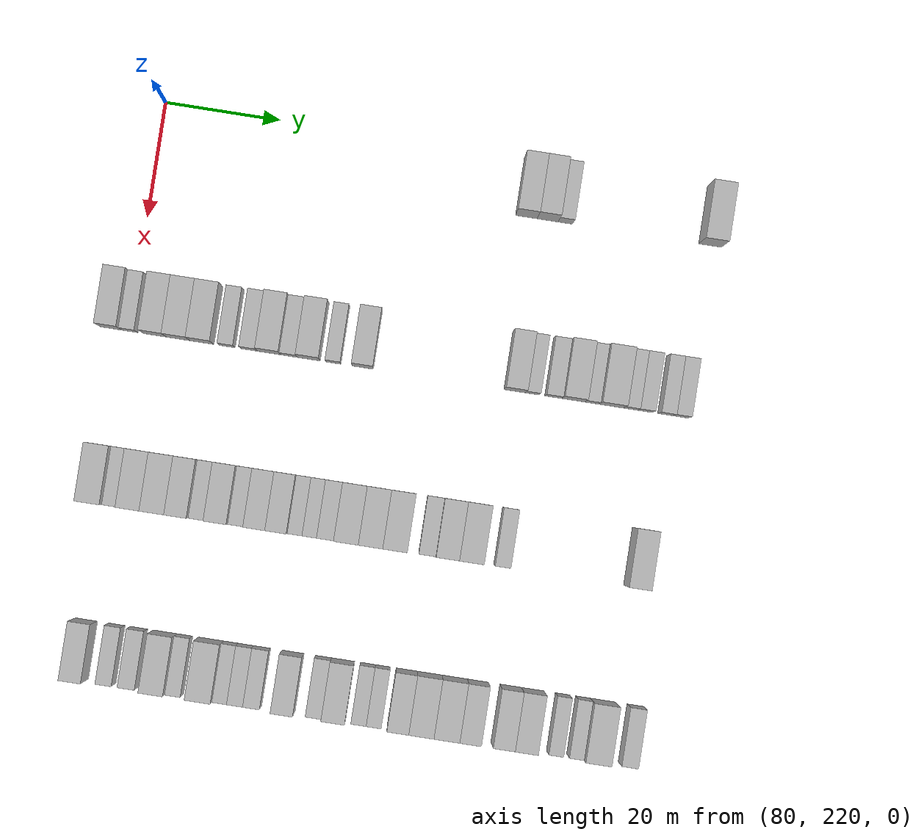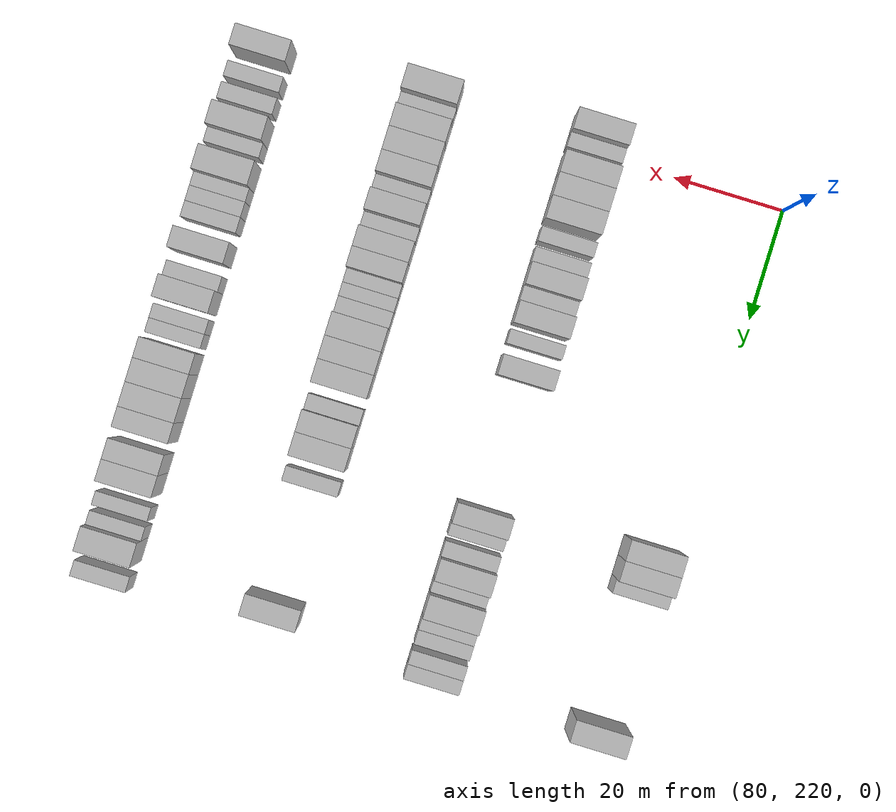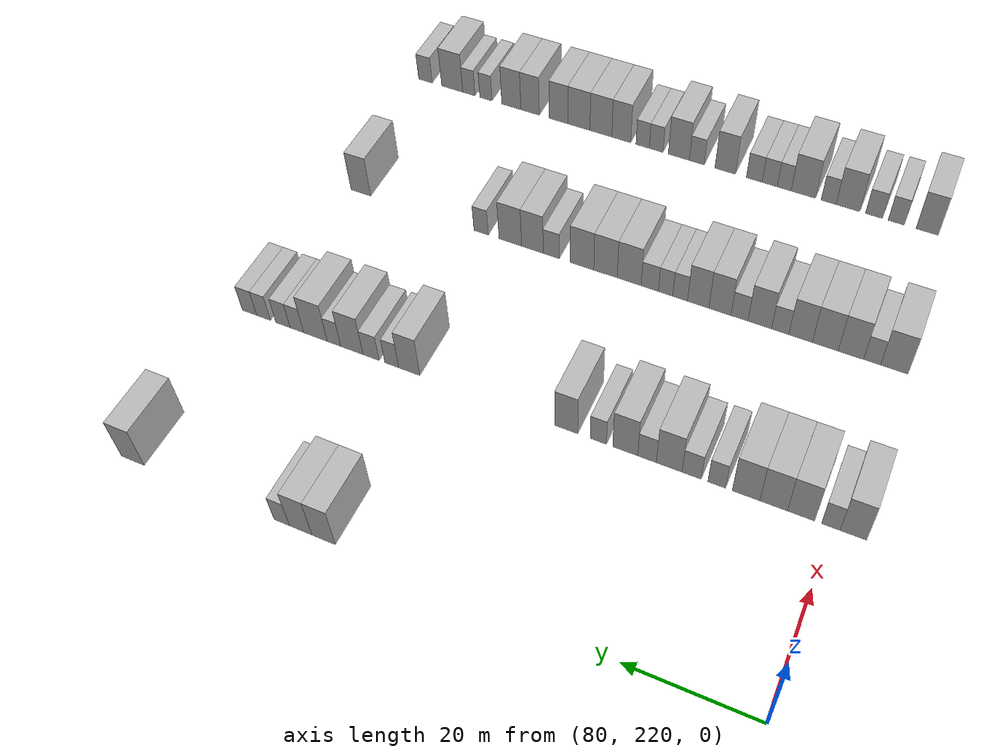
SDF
<sdf version="1.6">
 <world name="default">
  <model name="building_634">
   <static>1</static>
   <pose>85.0000 284.4619 0 0.000000 0.000000 0.000000</pose>
   <link name="link">
    <pose>0 0 4.50 0 0 0</pose>
    <collision name="collision"><geometry><box><size>10.0000 3.7493 9.0000</size></box></geometry></collision>
    <visual name="visual">
     <cast_shadows>0</cast_shadows>
     <geometry><box><size>10.0000 3.7493 9.0000</size></box></geometry>
     <material>
      <script>
       <uri>model://HANNAS_wall/materials/scripts</uri>
       <uri>model://HANNAS_wall/materials/textures</uri>
       <name>vrc/HANNAS_wall</name>
      </script>
     </material>
    </visual>
   </link>
  </model>
  <model name="building_635">
   <static>1</static>
   <pose>85.0000 288.1668 0 0.000000 0.000000 0.000000</pose>
   <link name="link">
    <pose>0 0 4.50 0 0 0</pose>
    <collision name="collision"><geometry><box><size>10.0000 3.6605 9.0000</size></box></geometry></collision>
    <visual name="visual">
     <cast_shadows>0</cast_shadows>
     <geometry><box><size>10.0000 3.6605 9.0000</size></box></geometry>
     <material>
      <script>
       <uri>model://HANNAS_wall/materials/scripts</uri>
       <uri>model://HANNAS_wall/materials/textures</uri>
       <name>vrc/HANNAS_wall</name>
      </script>
     </material>
    </visual>
   </link>
  </model>
  <model name="building_636">
   <static>1</static>
   <pose>85.0000 291.2552 0 0.000000 0.000000 0.000000</pose>
   <link name="link">
    <pose>0 0 3.00 0 0 0</pose>
    <collision name="collision"><geometry><box><size>10.0000 2.5165 6.0000</size></box></geometry></collision>
    <visual name="visual">
     <cast_shadows>0</cast_shadows>
     <geometry><box><size>10.0000 2.5165 6.0000</size></box></geometry>
     <material>
      <script>
       <uri>model://HANNAS_wall/materials/scripts</uri>
       <uri>model://HANNAS_wall/materials/textures</uri>
       <name>vrc/HANNAS_wall</name>
      </script>
     </material>
    </visual>
   </link>
  </model>
  <model name="building_637">
   <static>1</static>
   <pose>85.0000 316.4988 0 0.000000 0.000000 0.000000</pose>
   <link name="link">
    <pose>0 0 4.50 0 0 0</pose>
    <collision name="collision"><geometry><box><size>10.0000 3.9902 9.0000</size></box></geometry></collision>
    <visual name="visual">
     <cast_shadows>0</cast_shadows>
     <geometry><box><size>10.0000 3.9902 9.0000</size></box></geometry>
     <material>
      <script>
       <uri>model://HANNAS_wall/materials/scripts</uri>
       <uri>model://HANNAS_wall/materials/textures</uri>
       <name>vrc/HANNAS_wall</name>
      </script>
     </material>
    </visual>
   </link>
  </model>
  <model name="building_838">
   <static>1</static>
   <pose>115.0000 216.9554 0 0.000000 0.000000 0.000000</pose>
   <link name="link">
    <pose>0 0 4.50 0 0 0</pose>
    <collision name="collision"><geometry><box><size>10.0000 3.8053 9.0000</size></box></geometry></collision>
    <visual name="visual">
     <cast_shadows>0</cast_shadows>
     <geometry><box><size>10.0000 3.8053 9.0000</size></box></geometry>
     <material>
      <script>
       <uri>model://HANNAS_wall/materials/scripts</uri>
       <uri>model://HANNAS_wall/materials/textures</uri>
       <name>vrc/HANNAS_wall</name>
      </script>
     </material>
    </visual>
   </link>
  </model>
  <model name="building_839">
   <static>1</static>
   <pose>115.0000 220.1987 0 0.000000 0.000000 0.000000</pose>
   <link name="link">
    <pose>0 0 3.00 0 0 0</pose>
    <collision name="collision"><geometry><box><size>10.0000 2.6813 6.0000</size></box></geometry></collision>
    <visual name="visual">
     <cast_shadows>0</cast_shadows>
     <geometry><box><size>10.0000 2.6813 6.0000</size></box></geometry>
     <material>
      <script>
       <uri>model://HANNAS_wall/materials/scripts</uri>
       <uri>model://HANNAS_wall/materials/textures</uri>
       <name>vrc/HANNAS_wall</name>
      </script>
     </material>
    </visual>
   </link>
  </model>
  <model name="building_840">
   <static>1</static>
   <pose>115.0000 224.5318 0 0.000000 0.000000 0.000000</pose>
   <link name="link">
    <pose>0 0 4.50 0 0 0</pose>
    <collision name="collision"><geometry><box><size>10.0000 3.9849 9.0000</size></box></geometry></collision>
    <visual name="visual">
     <cast_shadows>0</cast_shadows>
     <geometry><box><size>10.0000 3.9849 9.0000</size></box></geometry>
     <material>
      <script>
       <uri>model://HANNAS_wall/materials/scripts</uri>
       <uri>model://HANNAS_wall/materials/textures</uri>
       <name>vrc/HANNAS_wall</name>
      </script>
     </material>
    </visual>
   </link>
  </model>
  <model name="building_841">
   <static>1</static>
   <pose>115.0000 228.5783 0 0.000000 0.000000 0.000000</pose>
   <link name="link">
    <pose>0 0 4.50 0 0 0</pose>
    <collision name="collision"><geometry><box><size>10.0000 4.1080 9.0000</size></box></geometry></collision>
    <visual name="visual">
     <cast_shadows>0</cast_shadows>
     <geometry><box><size>10.0000 4.1080 9.0000</size></box></geometry>
     <material>
      <script>
       <uri>model://HANNAS_wall/materials/scripts</uri>
       <uri>model://HANNAS_wall/materials/textures</uri>
       <name>vrc/HANNAS_wall</name>
      </script>
     </material>
    </visual>
   </link>
  </model>
  <model name="building_842">
   <static>1</static>
   <pose>115.0000 232.6899 0 0.000000 0.000000 0.000000</pose>
   <link name="link">
    <pose>0 0 4.50 0 0 0</pose>
    <collision name="collision"><geometry><box><size>10.0000 4.1153 9.0000</size></box></geometry></collision>
    <visual name="visual">
     <cast_shadows>0</cast_shadows>
     <geometry><box><size>10.0000 4.1153 9.0000</size></box></geometry>
     <material>
      <script>
       <uri>model://HANNAS_wall/materials/scripts</uri>
       <uri>model://HANNAS_wall/materials/textures</uri>
       <name>vrc/HANNAS_wall</name>
      </script>
     </material>
    </visual>
   </link>
  </model>
  <model name="building_843">
   <static>1</static>
   <pose>115.0000 237.0971 0 0.000000 0.000000 0.000000</pose>
   <link name="link">
    <pose>0 0 3.00 0 0 0</pose>
    <collision name="collision"><geometry><box><size>10.0000 2.6990 6.0000</size></box></geometry></collision>
    <visual name="visual">
     <cast_shadows>0</cast_shadows>
     <geometry><box><size>10.0000 2.6990 6.0000</size></box></geometry>
     <material>
      <script>
       <uri>model://HANNAS_wall/materials/scripts</uri>
       <uri>model://HANNAS_wall/materials/textures</uri>
       <name>vrc/HANNAS_wall</name>
      </script>
     </material>
    </visual>
   </link>
  </model>
  <model name="building_844">
   <static>1</static>
   <pose>115.0000 240.9316 0 0.000000 0.000000 0.000000</pose>
   <link name="link">
    <pose>0 0 3.00 0 0 0</pose>
    <collision name="collision"><geometry><box><size>10.0000 2.9701 6.0000</size></box></geometry></collision>
    <visual name="visual">
     <cast_shadows>0</cast_shadows>
     <geometry><box><size>10.0000 2.9701 6.0000</size></box></geometry>
     <material>
      <script>
       <uri>model://HANNAS_wall/materials/scripts</uri>
       <uri>model://HANNAS_wall/materials/textures</uri>
       <name>vrc/HANNAS_wall</name>
      </script>
     </material>
    </visual>
   </link>
  </model>
  <model name="building_845">
   <static>1</static>
   <pose>115.0000 244.4042 0 0.000000 0.000000 0.000000</pose>
   <link name="link">
    <pose>0 0 4.50 0 0 0</pose>
    <collision name="collision"><geometry><box><size>10.0000 3.9750 9.0000</size></box></geometry></collision>
    <visual name="visual">
     <cast_shadows>0</cast_shadows>
     <geometry><box><size>10.0000 3.9750 9.0000</size></box></geometry>
     <material>
      <script>
       <uri>model://HANNAS_wall/materials/scripts</uri>
       <uri>model://HANNAS_wall/materials/textures</uri>
       <name>vrc/HANNAS_wall</name>
      </script>
     </material>
    </visual>
   </link>
  </model>
  <model name="building_846">
   <static>1</static>
   <pose>115.0000 247.8423 0 0.000000 0.000000 0.000000</pose>
   <link name="link">
    <pose>0 0 3.00 0 0 0</pose>
    <collision name="collision"><geometry><box><size>10.0000 2.9011 6.0000</size></box></geometry></collision>
    <visual name="visual">
     <cast_shadows>0</cast_shadows>
     <geometry><box><size>10.0000 2.9011 6.0000</size></box></geometry>
     <material>
      <script>
       <uri>model://HANNAS_wall/materials/scripts</uri>
       <uri>model://HANNAS_wall/materials/textures</uri>
       <name>vrc/HANNAS_wall</name>
      </script>
     </material>
    </visual>
   </link>
  </model>
  <model name="building_847">
   <static>1</static>
   <pose>115.0000 251.2636 0 0.000000 0.000000 0.000000</pose>
   <link name="link">
    <pose>0 0 4.50 0 0 0</pose>
    <collision name="collision"><geometry><box><size>10.0000 3.9415 9.0000</size></box></geometry></collision>
    <visual name="visual">
     <cast_shadows>0</cast_shadows>
     <geometry><box><size>10.0000 3.9415 9.0000</size></box></geometry>
     <material>
      <script>
       <uri>model://HANNAS_wall/materials/scripts</uri>
       <uri>model://HANNAS_wall/materials/textures</uri>
       <name>vrc/HANNAS_wall</name>
      </script>
     </material>
    </visual>
   </link>
  </model>
  <model name="building_848">
   <static>1</static>
   <pose>115.0000 255.5316 0 0.000000 0.000000 0.000000</pose>
   <link name="link">
    <pose>0 0 3.00 0 0 0</pose>
    <collision name="collision"><geometry><box><size>10.0000 2.5944 6.0000</size></box></geometry></collision>
    <visual name="visual">
     <cast_shadows>0</cast_shadows>
     <geometry><box><size>10.0000 2.5944 6.0000</size></box></geometry>
     <material>
      <script>
       <uri>model://HANNAS_wall/materials/scripts</uri>
       <uri>model://HANNAS_wall/materials/textures</uri>
       <name>vrc/HANNAS_wall</name>
      </script>
     </material>
    </visual>
   </link>
  </model>
  <model name="building_849">
   <static>1</static>
   <pose>115.0000 260.6561 0 0.000000 0.000000 0.000000</pose>
   <link name="link">
    <pose>0 0 4.50 0 0 0</pose>
    <collision name="collision"><geometry><box><size>10.0000 3.6546 9.0000</size></box></geometry></collision>
    <visual name="visual">
     <cast_shadows>0</cast_shadows>
     <geometry><box><size>10.0000 3.6546 9.0000</size></box></geometry>
     <material>
      <script>
       <uri>model://HANNAS_wall/materials/scripts</uri>
       <uri>model://HANNAS_wall/materials/textures</uri>
       <name>vrc/HANNAS_wall</name>
      </script>
     </material>
    </visual>
   </link>
  </model>
  <model name="building_850">
   <static>1</static>
   <pose>115.0000 287.0211 0 0.000000 0.000000 0.000000</pose>
   <link name="link">
    <pose>0 0 4.50 0 0 0</pose>
    <collision name="collision"><geometry><box><size>10.0000 3.6918 9.0000</size></box></geometry></collision>
    <visual name="visual">
     <cast_shadows>0</cast_shadows>
     <geometry><box><size>10.0000 3.6918 9.0000</size></box></geometry>
     <material>
      <script>
       <uri>model://HANNAS_wall/materials/scripts</uri>
       <uri>model://HANNAS_wall/materials/textures</uri>
       <name>vrc/HANNAS_wall</name>
      </script>
     </material>
    </visual>
   </link>
  </model>
  <model name="building_851">
   <static>1</static>
   <pose>115.0000 290.0725 0 0.000000 0.000000 0.000000</pose>
   <link name="link">
    <pose>0 0 3.00 0 0 0</pose>
    <collision name="collision"><geometry><box><size>10.0000 2.4110 6.0000</size></box></geometry></collision>
    <visual name="visual">
     <cast_shadows>0</cast_shadows>
     <geometry><box><size>10.0000 2.4110 6.0000</size></box></geometry>
     <material>
      <script>
       <uri>model://HANNAS_wall/materials/scripts</uri>
       <uri>model://HANNAS_wall/materials/textures</uri>
       <name>vrc/HANNAS_wall</name>
      </script>
     </material>
    </visual>
   </link>
  </model>
  <model name="building_852">
   <static>1</static>
   <pose>115.0000 293.7080 0 0.000000 0.000000 0.000000</pose>
   <link name="link">
    <pose>0 0 3.00 0 0 0</pose>
    <collision name="collision"><geometry><box><size>10.0000 2.8600 6.0000</size></box></geometry></collision>
    <visual name="visual">
     <cast_shadows>0</cast_shadows>
     <geometry><box><size>10.0000 2.8600 6.0000</size></box></geometry>
     <material>
      <script>
       <uri>model://HANNAS_wall/materials/scripts</uri>
       <uri>model://HANNAS_wall/materials/textures</uri>
       <name>vrc/HANNAS_wall</name>
      </script>
     </material>
    </visual>
   </link>
  </model>
  <model name="building_853">
   <static>1</static>
   <pose>115.0000 297.1183 0 0.000000 0.000000 0.000000</pose>
   <link name="link">
    <pose>0 0 4.50 0 0 0</pose>
    <collision name="collision"><geometry><box><size>10.0000 3.9606 9.0000</size></box></geometry></collision>
    <visual name="visual">
     <cast_shadows>0</cast_shadows>
     <geometry><box><size>10.0000 3.9606 9.0000</size></box></geometry>
     <material>
      <script>
       <uri>model://HANNAS_wall/materials/scripts</uri>
       <uri>model://HANNAS_wall/materials/textures</uri>
       <name>vrc/HANNAS_wall</name>
      </script>
     </material>
    </visual>
   </link>
  </model>
  <model name="building_854">
   <static>1</static>
   <pose>115.0000 300.3103 0 0.000000 0.000000 0.000000</pose>
   <link name="link">
    <pose>0 0 3.00 0 0 0</pose>
    <collision name="collision"><geometry><box><size>10.0000 2.4234 6.0000</size></box></geometry></collision>
    <visual name="visual">
     <cast_shadows>0</cast_shadows>
     <geometry><box><size>10.0000 2.4234 6.0000</size></box></geometry>
     <material>
      <script>
       <uri>model://HANNAS_wall/materials/scripts</uri>
       <uri>model://HANNAS_wall/materials/textures</uri>
       <name>vrc/HANNAS_wall</name>
      </script>
     </material>
    </visual>
   </link>
  </model>
  <model name="building_855">
   <static>1</static>
   <pose>115.0000 303.6743 0 0.000000 0.000000 0.000000</pose>
   <link name="link">
    <pose>0 0 4.50 0 0 0</pose>
    <collision name="collision"><geometry><box><size>10.0000 4.3046 9.0000</size></box></geometry></collision>
    <visual name="visual">
     <cast_shadows>0</cast_shadows>
     <geometry><box><size>10.0000 4.3046 9.0000</size></box></geometry>
     <material>
      <script>
       <uri>model://HANNAS_wall/materials/scripts</uri>
       <uri>model://HANNAS_wall/materials/textures</uri>
       <name>vrc/HANNAS_wall</name>
      </script>
     </material>
    </visual>
   </link>
  </model>
  <model name="building_856">
   <static>1</static>
   <pose>115.0000 307.0585 0 0.000000 0.000000 0.000000</pose>
   <link name="link">
    <pose>0 0 3.00 0 0 0</pose>
    <collision name="collision"><geometry><box><size>10.0000 2.4638 6.0000</size></box></geometry></collision>
    <visual name="visual">
     <cast_shadows>0</cast_shadows>
     <geometry><box><size>10.0000 2.4638 6.0000</size></box></geometry>
     <material>
      <script>
       <uri>model://HANNAS_wall/materials/scripts</uri>
       <uri>model://HANNAS_wall/materials/textures</uri>
       <name>vrc/HANNAS_wall</name>
      </script>
     </material>
    </visual>
   </link>
  </model>
  <model name="building_857">
   <static>1</static>
   <pose>115.0000 309.6032 0 0.000000 0.000000 0.000000</pose>
   <link name="link">
    <pose>0 0 3.00 0 0 0</pose>
    <collision name="collision"><geometry><box><size>10.0000 2.6256 6.0000</size></box></geometry></collision>
    <visual name="visual">
     <cast_shadows>0</cast_shadows>
     <geometry><box><size>10.0000 2.6256 6.0000</size></box></geometry>
     <material>
      <script>
       <uri>model://HANNAS_wall/materials/scripts</uri>
       <uri>model://HANNAS_wall/materials/textures</uri>
       <name>vrc/HANNAS_wall</name>
      </script>
     </material>
    </visual>
   </link>
  </model>
  <model name="building_858">
   <static>1</static>
   <pose>115.0000 313.2054 0 0.000000 0.000000 0.000000</pose>
   <link name="link">
    <pose>0 0 3.00 0 0 0</pose>
    <collision name="collision"><geometry><box><size>10.0000 2.5788 6.0000</size></box></geometry></collision>
    <visual name="visual">
     <cast_shadows>0</cast_shadows>
     <geometry><box><size>10.0000 2.5788 6.0000</size></box></geometry>
     <material>
      <script>
       <uri>model://HANNAS_wall/materials/scripts</uri>
       <uri>model://HANNAS_wall/materials/textures</uri>
       <name>vrc/HANNAS_wall</name>
      </script>
     </material>
    </visual>
   </link>
  </model>
  <model name="building_859">
   <static>1</static>
   <pose>115.0000 315.8160 0 0.000000 0.000000 0.000000</pose>
   <link name="link">
    <pose>0 0 3.00 0 0 0</pose>
    <collision name="collision"><geometry><box><size>10.0000 2.6425 6.0000</size></box></geometry></collision>
    <visual name="visual">
     <cast_shadows>0</cast_shadows>
     <geometry><box><size>10.0000 2.6425 6.0000</size></box></geometry>
     <material>
      <script>
       <uri>model://HANNAS_wall/materials/scripts</uri>
       <uri>model://HANNAS_wall/materials/textures</uri>
       <name>vrc/HANNAS_wall</name>
      </script>
     </material>
    </visual>
   </link>
  </model>
  <model name="building_1063">
   <static>1</static>
   <pose>145.0000 218.6642 0 0.000000 0.000000 0.000000</pose>
   <link name="link">
    <pose>0 0 4.50 0 0 0</pose>
    <collision name="collision"><geometry><box><size>10.0000 4.2945 9.0000</size></box></geometry></collision>
    <visual name="visual">
     <cast_shadows>0</cast_shadows>
     <geometry><box><size>10.0000 4.2945 9.0000</size></box></geometry>
     <material>
      <script>
       <uri>model://HANNAS_wall/materials/scripts</uri>
       <uri>model://HANNAS_wall/materials/textures</uri>
       <name>vrc/HANNAS_wall</name>
      </script>
     </material>
    </visual>
   </link>
  </model>
  <model name="building_1064">
   <static>1</static>
   <pose>145.0000 222.1513 0 0.000000 0.000000 0.000000</pose>
   <link name="link">
    <pose>0 0 3.00 0 0 0</pose>
    <collision name="collision"><geometry><box><size>10.0000 2.6797 6.0000</size></box></geometry></collision>
    <visual name="visual">
     <cast_shadows>0</cast_shadows>
     <geometry><box><size>10.0000 2.6797 6.0000</size></box></geometry>
     <material>
      <script>
       <uri>model://HANNAS_wall/materials/scripts</uri>
       <uri>model://HANNAS_wall/materials/textures</uri>
       <name>vrc/HANNAS_wall</name>
      </script>
     </material>
    </visual>
   </link>
  </model>
  <model name="building_1065">
   <static>1</static>
   <pose>145.0000 225.5182 0 0.000000 0.000000 0.000000</pose>
   <link name="link">
    <pose>0 0 4.50 0 0 0</pose>
    <collision name="collision"><geometry><box><size>10.0000 4.0542 9.0000</size></box></geometry></collision>
    <visual name="visual">
     <cast_shadows>0</cast_shadows>
     <geometry><box><size>10.0000 4.0542 9.0000</size></box></geometry>
     <material>
      <script>
       <uri>model://HANNAS_wall/materials/scripts</uri>
       <uri>model://HANNAS_wall/materials/textures</uri>
       <name>vrc/HANNAS_wall</name>
      </script>
     </material>
    </visual>
   </link>
  </model>
  <model name="building_1066">
   <static>1</static>
   <pose>145.0000 229.6432 0 0.000000 0.000000 0.000000</pose>
   <link name="link">
    <pose>0 0 4.50 0 0 0</pose>
    <collision name="collision"><geometry><box><size>10.0000 4.1957 9.0000</size></box></geometry></collision>
    <visual name="visual">
     <cast_shadows>0</cast_shadows>
     <geometry><box><size>10.0000 4.1957 9.0000</size></box></geometry>
     <material>
      <script>
       <uri>model://HANNAS_wall/materials/scripts</uri>
       <uri>model://HANNAS_wall/materials/textures</uri>
       <name>vrc/HANNAS_wall</name>
      </script>
     </material>
    </visual>
   </link>
  </model>
  <model name="building_1067">
   <static>1</static>
   <pose>145.0000 233.6533 0 0.000000 0.000000 0.000000</pose>
   <link name="link">
    <pose>0 0 4.50 0 0 0</pose>
    <collision name="collision"><geometry><box><size>10.0000 3.8246 9.0000</size></box></geometry></collision>
    <visual name="visual">
     <cast_shadows>0</cast_shadows>
     <geometry><box><size>10.0000 3.8246 9.0000</size></box></geometry>
     <material>
      <script>
       <uri>model://HANNAS_wall/materials/scripts</uri>
       <uri>model://HANNAS_wall/materials/textures</uri>
       <name>vrc/HANNAS_wall</name>
      </script>
     </material>
    </visual>
   </link>
  </model>
  <model name="building_1068">
   <static>1</static>
   <pose>145.0000 236.9856 0 0.000000 0.000000 0.000000</pose>
   <link name="link">
    <pose>0 0 3.00 0 0 0</pose>
    <collision name="collision"><geometry><box><size>10.0000 2.8398 6.0000</size></box></geometry></collision>
    <visual name="visual">
     <cast_shadows>0</cast_shadows>
     <geometry><box><size>10.0000 2.8398 6.0000</size></box></geometry>
     <material>
      <script>
       <uri>model://HANNAS_wall/materials/scripts</uri>
       <uri>model://HANNAS_wall/materials/textures</uri>
       <name>vrc/HANNAS_wall</name>
      </script>
     </material>
    </visual>
   </link>
  </model>
  <model name="building_1069">
   <static>1</static>
   <pose>145.0000 240.3594 0 0.000000 0.000000 0.000000</pose>
   <link name="link">
    <pose>0 0 4.50 0 0 0</pose>
    <collision name="collision"><geometry><box><size>10.0000 3.9079 9.0000</size></box></geometry></collision>
    <visual name="visual">
     <cast_shadows>0</cast_shadows>
     <geometry><box><size>10.0000 3.9079 9.0000</size></box></geometry>
     <material>
      <script>
       <uri>model://HANNAS_wall/materials/scripts</uri>
       <uri>model://HANNAS_wall/materials/textures</uri>
       <name>vrc/HANNAS_wall</name>
      </script>
     </material>
    </visual>
   </link>
  </model>
  <model name="building_1070">
   <static>1</static>
   <pose>145.0000 243.7230 0 0.000000 0.000000 0.000000</pose>
   <link name="link">
    <pose>0 0 3.00 0 0 0</pose>
    <collision name="collision"><geometry><box><size>10.0000 2.8191 6.0000</size></box></geometry></collision>
    <visual name="visual">
     <cast_shadows>0</cast_shadows>
     <geometry><box><size>10.0000 2.8191 6.0000</size></box></geometry>
     <material>
      <script>
       <uri>model://HANNAS_wall/materials/scripts</uri>
       <uri>model://HANNAS_wall/materials/textures</uri>
       <name>vrc/HANNAS_wall</name>
      </script>
     </material>
    </visual>
   </link>
  </model>
  <model name="building_1071">
   <static>1</static>
   <pose>145.0000 246.9979 0 0.000000 0.000000 0.000000</pose>
   <link name="link">
    <pose>0 0 4.50 0 0 0</pose>
    <collision name="collision"><geometry><box><size>10.0000 3.7308 9.0000</size></box></geometry></collision>
    <visual name="visual">
     <cast_shadows>0</cast_shadows>
     <geometry><box><size>10.0000 3.7308 9.0000</size></box></geometry>
     <material>
      <script>
       <uri>model://HANNAS_wall/materials/scripts</uri>
       <uri>model://HANNAS_wall/materials/textures</uri>
       <name>vrc/HANNAS_wall</name>
      </script>
     </material>
    </visual>
   </link>
  </model>
  <model name="building_1072">
   <static>1</static>
   <pose>145.0000 250.6805 0 0.000000 0.000000 0.000000</pose>
   <link name="link">
    <pose>0 0 4.50 0 0 0</pose>
    <collision name="collision"><geometry><box><size>10.0000 3.6344 9.0000</size></box></geometry></collision>
    <visual name="visual">
     <cast_shadows>0</cast_shadows>
     <geometry><box><size>10.0000 3.6344 9.0000</size></box></geometry>
     <material>
      <script>
       <uri>model://HANNAS_wall/materials/scripts</uri>
       <uri>model://HANNAS_wall/materials/textures</uri>
       <name>vrc/HANNAS_wall</name>
      </script>
     </material>
    </visual>
   </link>
  </model>
  <model name="building_1073">
   <static>1</static>
   <pose>145.0000 253.7580 0 0.000000 0.000000 0.000000</pose>
   <link name="link">
    <pose>0 0 3.00 0 0 0</pose>
    <collision name="collision"><geometry><box><size>10.0000 2.5204 6.0000</size></box></geometry></collision>
    <visual name="visual">
     <cast_shadows>0</cast_shadows>
     <geometry><box><size>10.0000 2.5204 6.0000</size></box></geometry>
     <material>
      <script>
       <uri>model://HANNAS_wall/materials/scripts</uri>
       <uri>model://HANNAS_wall/materials/textures</uri>
       <name>vrc/HANNAS_wall</name>
      </script>
     </material>
    </visual>
   </link>
  </model>
  <model name="building_1074">
   <static>1</static>
   <pose>145.0000 256.2598 0 0.000000 0.000000 0.000000</pose>
   <link name="link">
    <pose>0 0 3.00 0 0 0</pose>
    <collision name="collision"><geometry><box><size>10.0000 2.4832 6.0000</size></box></geometry></collision>
    <visual name="visual">
     <cast_shadows>0</cast_shadows>
     <geometry><box><size>10.0000 2.4832 6.0000</size></box></geometry>
     <material>
      <script>
       <uri>model://HANNAS_wall/materials/scripts</uri>
       <uri>model://HANNAS_wall/materials/textures</uri>
       <name>vrc/HANNAS_wall</name>
      </script>
     </material>
    </visual>
   </link>
  </model>
  <model name="building_1075">
   <static>1</static>
   <pose>145.0000 258.9997 0 0.000000 0.000000 0.000000</pose>
   <link name="link">
    <pose>0 0 3.00 0 0 0</pose>
    <collision name="collision"><geometry><box><size>10.0000 2.9967 6.0000</size></box></geometry></collision>
    <visual name="visual">
     <cast_shadows>0</cast_shadows>
     <geometry><box><size>10.0000 2.9967 6.0000</size></box></geometry>
     <material>
      <script>
       <uri>model://HANNAS_wall/materials/scripts</uri>
       <uri>model://HANNAS_wall/materials/textures</uri>
       <name>vrc/HANNAS_wall</name>
      </script>
     </material>
    </visual>
   </link>
  </model>
  <model name="building_1076">
   <static>1</static>
   <pose>145.0000 262.5958 0 0.000000 0.000000 0.000000</pose>
   <link name="link">
    <pose>0 0 4.50 0 0 0</pose>
    <collision name="collision"><geometry><box><size>10.0000 4.1955 9.0000</size></box></geometry></collision>
    <visual name="visual">
     <cast_shadows>0</cast_shadows>
     <geometry><box><size>10.0000 4.1955 9.0000</size></box></geometry>
     <material>
      <script>
       <uri>model://HANNAS_wall/materials/scripts</uri>
       <uri>model://HANNAS_wall/materials/textures</uri>
       <name>vrc/HANNAS_wall</name>
      </script>
     </material>
    </visual>
   </link>
  </model>
  <model name="building_1077">
   <static>1</static>
   <pose>145.0000 266.7675 0 0.000000 0.000000 0.000000</pose>
   <link name="link">
    <pose>0 0 4.50 0 0 0</pose>
    <collision name="collision"><geometry><box><size>10.0000 4.1479 9.0000</size></box></geometry></collision>
    <visual name="visual">
     <cast_shadows>0</cast_shadows>
     <geometry><box><size>10.0000 4.1479 9.0000</size></box></geometry>
     <material>
      <script>
       <uri>model://HANNAS_wall/materials/scripts</uri>
       <uri>model://HANNAS_wall/materials/textures</uri>
       <name>vrc/HANNAS_wall</name>
      </script>
     </material>
    </visual>
   </link>
  </model>
  <model name="building_1078">
   <static>1</static>
   <pose>145.0000 270.9243 0 0.000000 0.000000 0.000000</pose>
   <link name="link">
    <pose>0 0 4.50 0 0 0</pose>
    <collision name="collision"><geometry><box><size>10.0000 4.1657 9.0000</size></box></geometry></collision>
    <visual name="visual">
     <cast_shadows>0</cast_shadows>
     <geometry><box><size>10.0000 4.1657 9.0000</size></box></geometry>
     <material>
      <script>
       <uri>model://HANNAS_wall/materials/scripts</uri>
       <uri>model://HANNAS_wall/materials/textures</uri>
       <name>vrc/HANNAS_wall</name>
      </script>
     </material>
    </visual>
   </link>
  </model>
  <model name="building_1079">
   <static>1</static>
   <pose>145.0000 276.4536 0 0.000000 0.000000 0.000000</pose>
   <link name="link">
    <pose>0 0 3.00 0 0 0</pose>
    <collision name="collision"><geometry><box><size>10.0000 2.8930 6.0000</size></box></geometry></collision>
    <visual name="visual">
     <cast_shadows>0</cast_shadows>
     <geometry><box><size>10.0000 2.8930 6.0000</size></box></geometry>
     <material>
      <script>
       <uri>model://HANNAS_wall/materials/scripts</uri>
       <uri>model://HANNAS_wall/materials/textures</uri>
       <name>vrc/HANNAS_wall</name>
      </script>
     </material>
    </visual>
   </link>
  </model>
  <model name="building_1080">
   <static>1</static>
   <pose>145.0000 279.8773 0 0.000000 0.000000 0.000000</pose>
   <link name="link">
    <pose>0 0 4.50 0 0 0</pose>
    <collision name="collision"><geometry><box><size>10.0000 3.9543 9.0000</size></box></geometry></collision>
    <visual name="visual">
     <cast_shadows>0</cast_shadows>
     <geometry><box><size>10.0000 3.9543 9.0000</size></box></geometry>
     <material>
      <script>
       <uri>model://HANNAS_wall/materials/scripts</uri>
       <uri>model://HANNAS_wall/materials/textures</uri>
       <name>vrc/HANNAS_wall</name>
      </script>
     </material>
    </visual>
   </link>
  </model>
  <model name="building_1081">
   <static>1</static>
   <pose>145.0000 283.9426 0 0.000000 0.000000 0.000000</pose>
   <link name="link">
    <pose>0 0 4.50 0 0 0</pose>
    <collision name="collision"><geometry><box><size>10.0000 4.1763 9.0000</size></box></geometry></collision>
    <visual name="visual">
     <cast_shadows>0</cast_shadows>
     <geometry><box><size>10.0000 4.1763 9.0000</size></box></geometry>
     <material>
      <script>
       <uri>model://HANNAS_wall/materials/scripts</uri>
       <uri>model://HANNAS_wall/materials/textures</uri>
       <name>vrc/HANNAS_wall</name>
      </script>
     </material>
    </visual>
   </link>
  </model>
  <model name="building_1082">
   <static>1</static>
   <pose>145.0000 289.3680 0 0.000000 0.000000 0.000000</pose>
   <link name="link">
    <pose>0 0 3.00 0 0 0</pose>
    <collision name="collision"><geometry><box><size>10.0000 2.6745 6.0000</size></box></geometry></collision>
    <visual name="visual">
     <cast_shadows>0</cast_shadows>
     <geometry><box><size>10.0000 2.6745 6.0000</size></box></geometry>
     <material>
      <script>
       <uri>model://HANNAS_wall/materials/scripts</uri>
       <uri>model://HANNAS_wall/materials/textures</uri>
       <name>vrc/HANNAS_wall</name>
      </script>
     </material>
    </visual>
   </link>
  </model>
  <model name="building_1083">
   <static>1</static>
   <pose>145.0000 312.5004 0 0.000000 0.000000 0.000000</pose>
   <link name="link">
    <pose>0 0 4.50 0 0 0</pose>
    <collision name="collision"><geometry><box><size>10.0000 3.8634 9.0000</size></box></geometry></collision>
    <visual name="visual">
     <cast_shadows>0</cast_shadows>
     <geometry><box><size>10.0000 3.8634 9.0000</size></box></geometry>
     <material>
      <script>
       <uri>model://HANNAS_wall/materials/scripts</uri>
       <uri>model://HANNAS_wall/materials/textures</uri>
       <name>vrc/HANNAS_wall</name>
      </script>
     </material>
    </visual>
   </link>
  </model>
  <model name="building_1283">
   <static>1</static>
   <pose>175.0000 220.5463 0 0.000000 0.000000 0.000000</pose>
   <link name="link">
    <pose>0 0 4.50 0 0 0</pose>
    <collision name="collision"><geometry><box><size>10.0000 3.7951 9.0000</size></box></geometry></collision>
    <visual name="visual">
     <cast_shadows>0</cast_shadows>
     <geometry><box><size>10.0000 3.7951 9.0000</size></box></geometry>
     <material>
      <script>
       <uri>model://HANNAS_wall/materials/scripts</uri>
       <uri>model://HANNAS_wall/materials/textures</uri>
       <name>vrc/HANNAS_wall</name>
      </script>
     </material>
    </visual>
   </link>
  </model>
  <model name="building_1284">
   <static>1</static>
   <pose>175.0000 225.8329 0 0.000000 0.000000 0.000000</pose>
   <link name="link">
    <pose>0 0 3.00 0 0 0</pose>
    <collision name="collision"><geometry><box><size>10.0000 2.7780 6.0000</size></box></geometry></collision>
    <visual name="visual">
     <cast_shadows>0</cast_shadows>
     <geometry><box><size>10.0000 2.7780 6.0000</size></box></geometry>
     <material>
      <script>
       <uri>model://HANNAS_wall/materials/scripts</uri>
       <uri>model://HANNAS_wall/materials/textures</uri>
       <name>vrc/HANNAS_wall</name>
      </script>
     </material>
    </visual>
   </link>
  </model>
  <model name="building_1285">
   <static>1</static>
   <pose>175.0000 229.6906 0 0.000000 0.000000 0.000000</pose>
   <link name="link">
    <pose>0 0 3.00 0 0 0</pose>
    <collision name="collision"><geometry><box><size>10.0000 2.9375 6.0000</size></box></geometry></collision>
    <visual name="visual">
     <cast_shadows>0</cast_shadows>
     <geometry><box><size>10.0000 2.9375 6.0000</size></box></geometry>
     <material>
      <script>
       <uri>model://HANNAS_wall/materials/scripts</uri>
       <uri>model://HANNAS_wall/materials/textures</uri>
       <name>vrc/HANNAS_wall</name>
      </script>
     </material>
    </visual>
   </link>
  </model>
  <model name="building_1286">
   <static>1</static>
   <pose>175.0000 234.2466 0 0.000000 0.000000 0.000000</pose>
   <link name="link">
    <pose>0 0 4.50 0 0 0</pose>
    <collision name="collision"><geometry><box><size>10.0000 4.1746 9.0000</size></box></geometry></collision>
    <visual name="visual">
     <cast_shadows>0</cast_shadows>
     <geometry><box><size>10.0000 4.1746 9.0000</size></box></geometry>
     <material>
      <script>
       <uri>model://HANNAS_wall/materials/scripts</uri>
       <uri>model://HANNAS_wall/materials/textures</uri>
       <name>vrc/HANNAS_wall</name>
      </script>
     </material>
    </visual>
   </link>
  </model>
  <model name="building_1287">
   <static>1</static>
   <pose>175.0000 237.6583 0 0.000000 0.000000 0.000000</pose>
   <link name="link">
    <pose>0 0 3.00 0 0 0</pose>
    <collision name="collision"><geometry><box><size>10.0000 2.6487 6.0000</size></box></geometry></collision>
    <visual name="visual">
     <cast_shadows>0</cast_shadows>
     <geometry><box><size>10.0000 2.6487 6.0000</size></box></geometry>
     <material>
      <script>
       <uri>model://HANNAS_wall/materials/scripts</uri>
       <uri>model://HANNAS_wall/materials/textures</uri>
       <name>vrc/HANNAS_wall</name>
      </script>
     </material>
    </visual>
   </link>
  </model>
  <model name="building_1288">
   <static>1</static>
   <pose>175.0000 242.1789 0 0.000000 0.000000 0.000000</pose>
   <link name="link">
    <pose>0 0 4.50 0 0 0</pose>
    <collision name="collision"><geometry><box><size>10.0000 4.3926 9.0000</size></box></geometry></collision>
    <visual name="visual">
     <cast_shadows>0</cast_shadows>
     <geometry><box><size>10.0000 4.3926 9.0000</size></box></geometry>
     <material>
      <script>
       <uri>model://HANNAS_wall/materials/scripts</uri>
       <uri>model://HANNAS_wall/materials/textures</uri>
       <name>vrc/HANNAS_wall</name>
      </script>
     </material>
    </visual>
   </link>
  </model>
  <model name="building_1289">
   <static>1</static>
   <pose>175.0000 245.6245 0 0.000000 0.000000 0.000000</pose>
   <link name="link">
    <pose>0 0 3.00 0 0 0</pose>
    <collision name="collision"><geometry><box><size>10.0000 2.4985 6.0000</size></box></geometry></collision>
    <visual name="visual">
     <cast_shadows>0</cast_shadows>
     <geometry><box><size>10.0000 2.4985 6.0000</size></box></geometry>
     <material>
      <script>
       <uri>model://HANNAS_wall/materials/scripts</uri>
       <uri>model://HANNAS_wall/materials/textures</uri>
       <name>vrc/HANNAS_wall</name>
      </script>
     </material>
    </visual>
   </link>
  </model>
  <model name="building_1290">
   <static>1</static>
   <pose>175.0000 248.2438 0 0.000000 0.000000 0.000000</pose>
   <link name="link">
    <pose>0 0 3.00 0 0 0</pose>
    <collision name="collision"><geometry><box><size>10.0000 2.7403 6.0000</size></box></geometry></collision>
    <visual name="visual">
     <cast_shadows>0</cast_shadows>
     <geometry><box><size>10.0000 2.7403 6.0000</size></box></geometry>
     <material>
      <script>
       <uri>model://HANNAS_wall/materials/scripts</uri>
       <uri>model://HANNAS_wall/materials/textures</uri>
       <name>vrc/HANNAS_wall</name>
      </script>
     </material>
    </visual>
   </link>
  </model>
  <model name="building_1291">
   <static>1</static>
   <pose>175.0000 251.0473 0 0.000000 0.000000 0.000000</pose>
   <link name="link">
    <pose>0 0 3.00 0 0 0</pose>
    <collision name="collision"><geometry><box><size>10.0000 2.8668 6.0000</size></box></geometry></collision>
    <visual name="visual">
     <cast_shadows>0</cast_shadows>
     <geometry><box><size>10.0000 2.8668 6.0000</size></box></geometry>
     <material>
      <script>
       <uri>model://HANNAS_wall/materials/scripts</uri>
       <uri>model://HANNAS_wall/materials/textures</uri>
       <name>vrc/HANNAS_wall</name>
      </script>
     </material>
    </visual>
   </link>
  </model>
  <model name="building_1292">
   <static>1</static>
   <pose>175.0000 256.3804 0 0.000000 0.000000 0.000000</pose>
   <link name="link">
    <pose>0 0 4.50 0 0 0</pose>
    <collision name="collision"><geometry><box><size>10.0000 3.7993 9.0000</size></box></geometry></collision>
    <visual name="visual">
     <cast_shadows>0</cast_shadows>
     <geometry><box><size>10.0000 3.7993 9.0000</size></box></geometry>
     <material>
      <script>
       <uri>model://HANNAS_wall/materials/scripts</uri>
       <uri>model://HANNAS_wall/materials/textures</uri>
       <name>vrc/HANNAS_wall</name>
      </script>
     </material>
    </visual>
   </link>
  </model>
  <model name="building_1293">
   <static>1</static>
   <pose>175.0000 261.6655 0 0.000000 0.000000 0.000000</pose>
   <link name="link">
    <pose>0 0 3.00 0 0 0</pose>
    <collision name="collision"><geometry><box><size>10.0000 2.7710 6.0000</size></box></geometry></collision>
    <visual name="visual">
     <cast_shadows>0</cast_shadows>
     <geometry><box><size>10.0000 2.7710 6.0000</size></box></geometry>
     <material>
      <script>
       <uri>model://HANNAS_wall/materials/scripts</uri>
       <uri>model://HANNAS_wall/materials/textures</uri>
       <name>vrc/HANNAS_wall</name>
      </script>
     </material>
    </visual>
   </link>
  </model>
  <model name="building_1294">
   <static>1</static>
   <pose>175.0000 265.0479 0 0.000000 0.000000 0.000000</pose>
   <link name="link">
    <pose>0 0 4.50 0 0 0</pose>
    <collision name="collision"><geometry><box><size>10.0000 3.9938 9.0000</size></box></geometry></collision>
    <visual name="visual">
     <cast_shadows>0</cast_shadows>
     <geometry><box><size>10.0000 3.9938 9.0000</size></box></geometry>
     <material>
      <script>
       <uri>model://HANNAS_wall/materials/scripts</uri>
       <uri>model://HANNAS_wall/materials/textures</uri>
       <name>vrc/HANNAS_wall</name>
      </script>
     </material>
    </visual>
   </link>
  </model>
  <model name="building_1295">
   <static>1</static>
   <pose>175.0000 269.3531 0 0.000000 0.000000 0.000000</pose>
   <link name="link">
    <pose>0 0 3.00 0 0 0</pose>
    <collision name="collision"><geometry><box><size>10.0000 2.6165 6.0000</size></box></geometry></collision>
    <visual name="visual">
     <cast_shadows>0</cast_shadows>
     <geometry><box><size>10.0000 2.6165 6.0000</size></box></geometry>
     <material>
      <script>
       <uri>model://HANNAS_wall/materials/scripts</uri>
       <uri>model://HANNAS_wall/materials/textures</uri>
       <name>vrc/HANNAS_wall</name>
      </script>
     </material>
    </visual>
   </link>
  </model>
  <model name="building_1296">
   <static>1</static>
   <pose>175.0000 271.9421 0 0.000000 0.000000 0.000000</pose>
   <link name="link">
    <pose>0 0 3.00 0 0 0</pose>
    <collision name="collision"><geometry><box><size>10.0000 2.5615 6.0000</size></box></geometry></collision>
    <visual name="visual">
     <cast_shadows>0</cast_shadows>
     <geometry><box><size>10.0000 2.5615 6.0000</size></box></geometry>
     <material>
      <script>
       <uri>model://HANNAS_wall/materials/scripts</uri>
       <uri>model://HANNAS_wall/materials/textures</uri>
       <name>vrc/HANNAS_wall</name>
      </script>
     </material>
    </visual>
   </link>
  </model>
  <model name="building_1297">
   <static>1</static>
   <pose>175.0000 276.0622 0 0.000000 0.000000 0.000000</pose>
   <link name="link">
    <pose>0 0 4.50 0 0 0</pose>
    <collision name="collision"><geometry><box><size>10.0000 3.6787 9.0000</size></box></geometry></collision>
    <visual name="visual">
     <cast_shadows>0</cast_shadows>
     <geometry><box><size>10.0000 3.6787 9.0000</size></box></geometry>
     <material>
      <script>
       <uri>model://HANNAS_wall/materials/scripts</uri>
       <uri>model://HANNAS_wall/materials/textures</uri>
       <name>vrc/HANNAS_wall</name>
      </script>
     </material>
    </visual>
   </link>
  </model>
  <model name="building_1298">
   <static>1</static>
   <pose>175.0000 280.0346 0 0.000000 0.000000 0.000000</pose>
   <link name="link">
    <pose>0 0 4.50 0 0 0</pose>
    <collision name="collision"><geometry><box><size>10.0000 4.2661 9.0000</size></box></geometry></collision>
    <visual name="visual">
     <cast_shadows>0</cast_shadows>
     <geometry><box><size>10.0000 4.2661 9.0000</size></box></geometry>
     <material>
      <script>
       <uri>model://HANNAS_wall/materials/scripts</uri>
       <uri>model://HANNAS_wall/materials/textures</uri>
       <name>vrc/HANNAS_wall</name>
      </script>
     </material>
    </visual>
   </link>
  </model>
  <model name="building_1299">
   <static>1</static>
   <pose>175.0000 284.3533 0 0.000000 0.000000 0.000000</pose>
   <link name="link">
    <pose>0 0 4.50 0 0 0</pose>
    <collision name="collision"><geometry><box><size>10.0000 4.3713 9.0000</size></box></geometry></collision>
    <visual name="visual">
     <cast_shadows>0</cast_shadows>
     <geometry><box><size>10.0000 4.3713 9.0000</size></box></geometry>
     <material>
      <script>
       <uri>model://HANNAS_wall/materials/scripts</uri>
       <uri>model://HANNAS_wall/materials/textures</uri>
       <name>vrc/HANNAS_wall</name>
      </script>
     </material>
    </visual>
   </link>
  </model>
  <model name="building_1300">
   <static>1</static>
   <pose>175.0000 288.3634 0 0.000000 0.000000 0.000000</pose>
   <link name="link">
    <pose>0 0 4.50 0 0 0</pose>
    <collision name="collision"><geometry><box><size>10.0000 3.6490 9.0000</size></box></geometry></collision>
    <visual name="visual">
     <cast_shadows>0</cast_shadows>
     <geometry><box><size>10.0000 3.6490 9.0000</size></box></geometry>
     <material>
      <script>
       <uri>model://HANNAS_wall/materials/scripts</uri>
       <uri>model://HANNAS_wall/materials/textures</uri>
       <name>vrc/HANNAS_wall</name>
      </script>
     </material>
    </visual>
   </link>
  </model>
  <model name="building_1301">
   <static>1</static>
   <pose>175.0000 294.0470 0 0.000000 0.000000 0.000000</pose>
   <link name="link">
    <pose>0 0 4.50 0 0 0</pose>
    <collision name="collision"><geometry><box><size>10.0000 3.7182 9.0000</size></box></geometry></collision>
    <visual name="visual">
     <cast_shadows>0</cast_shadows>
     <geometry><box><size>10.0000 3.7182 9.0000</size></box></geometry>
     <material>
      <script>
       <uri>model://HANNAS_wall/materials/scripts</uri>
       <uri>model://HANNAS_wall/materials/textures</uri>
       <name>vrc/HANNAS_wall</name>
      </script>
     </material>
    </visual>
   </link>
  </model>
  <model name="building_1302">
   <static>1</static>
   <pose>175.0000 297.8477 0 0.000000 0.000000 0.000000</pose>
   <link name="link">
    <pose>0 0 4.50 0 0 0</pose>
    <collision name="collision"><geometry><box><size>10.0000 3.8831 9.0000</size></box></geometry></collision>
    <visual name="visual">
     <cast_shadows>0</cast_shadows>
     <geometry><box><size>10.0000 3.8831 9.0000</size></box></geometry>
     <material>
      <script>
       <uri>model://HANNAS_wall/materials/scripts</uri>
       <uri>model://HANNAS_wall/materials/textures</uri>
       <name>vrc/HANNAS_wall</name>
      </script>
     </material>
    </visual>
   </link>
  </model>
  <model name="building_1303">
   <static>1</static>
   <pose>175.0000 303.0424 0 0.000000 0.000000 0.000000</pose>
   <link name="link">
    <pose>0 0 3.00 0 0 0</pose>
    <collision name="collision"><geometry><box><size>10.0000 2.5063 6.0000</size></box></geometry></collision>
    <visual name="visual">
     <cast_shadows>0</cast_shadows>
     <geometry><box><size>10.0000 2.5063 6.0000</size></box></geometry>
     <material>
      <script>
       <uri>model://HANNAS_wall/materials/scripts</uri>
       <uri>model://HANNAS_wall/materials/textures</uri>
       <name>vrc/HANNAS_wall</name>
      </script>
     </material>
    </visual>
   </link>
  </model>
  <model name="building_1304">
   <static>1</static>
   <pose>175.0000 306.5562 0 0.000000 0.000000 0.000000</pose>
   <link name="link">
    <pose>0 0 3.00 0 0 0</pose>
    <collision name="collision"><geometry><box><size>10.0000 2.5214 6.0000</size></box></geometry></collision>
    <visual name="visual">
     <cast_shadows>0</cast_shadows>
     <geometry><box><size>10.0000 2.5214 6.0000</size></box></geometry>
     <material>
      <script>
       <uri>model://HANNAS_wall/materials/scripts</uri>
       <uri>model://HANNAS_wall/materials/textures</uri>
       <name>vrc/HANNAS_wall</name>
      </script>
     </material>
    </visual>
   </link>
  </model>
  <model name="building_1305">
   <static>1</static>
   <pose>175.0000 310.0148 0 0.000000 0.000000 0.000000</pose>
   <link name="link">
    <pose>0 0 4.50 0 0 0</pose>
    <collision name="collision"><geometry><box><size>10.0000 4.3958 9.0000</size></box></geometry></collision>
    <visual name="visual">
     <cast_shadows>0</cast_shadows>
     <geometry><box><size>10.0000 4.3958 9.0000</size></box></geometry>
     <material>
      <script>
       <uri>model://HANNAS_wall/materials/scripts</uri>
       <uri>model://HANNAS_wall/materials/textures</uri>
       <name>vrc/HANNAS_wall</name>
      </script>
     </material>
    </visual>
   </link>
  </model>
  <model name="building_1306">
   <static>1</static>
   <pose>175.0000 315.6340 0 0.000000 0.000000 0.000000</pose>
   <link name="link">
    <pose>0 0 3.00 0 0 0</pose>
    <collision name="collision"><geometry><box><size>10.0000 2.8426 6.0000</size></box></geometry></collision>
    <visual name="visual">
     <cast_shadows>0</cast_shadows>
     <geometry><box><size>10.0000 2.8426 6.0000</size></box></geometry>
     <material>
      <script>
       <uri>model://HANNAS_wall/materials/scripts</uri>
       <uri>model://HANNAS_wall/materials/textures</uri>
       <name>vrc/HANNAS_wall</name>
      </script>
     </material>
    </visual>
   </link>
  </model>
 </world>
</sdf>
